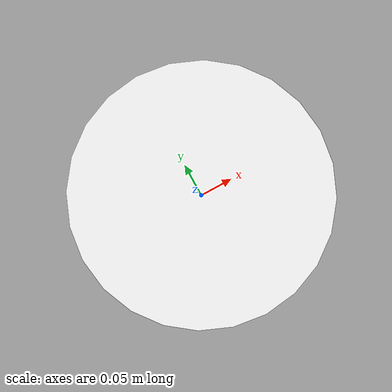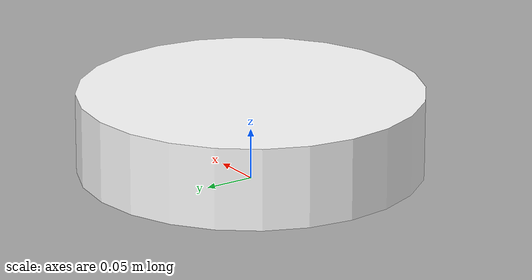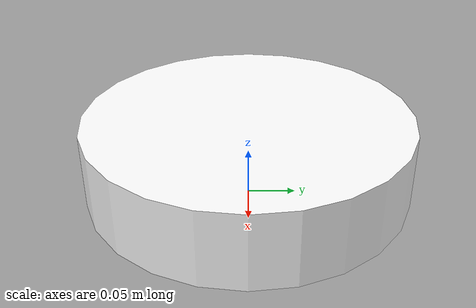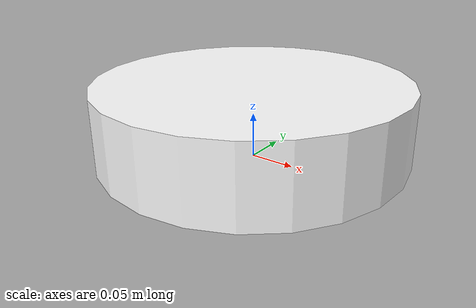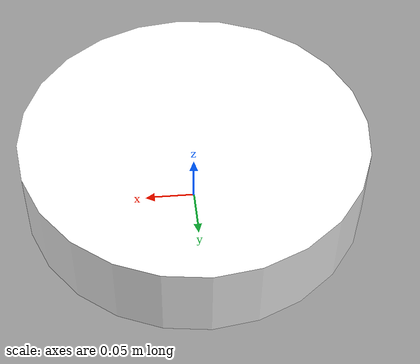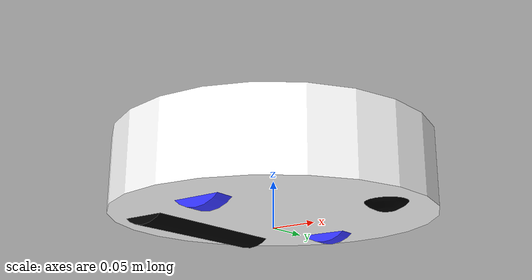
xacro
<?xml version="1.0"?>
<robot xmlns:xacro="http://www.ros.org/wiki/xacro" name="hubert">

    <xacro:include filename="inertial_macros.xacro"/>

    <xacro:property name="chassis_radius" value="0.17"/>
    <xacro:property name="chassis_height" value="0.08"/>
    <xacro:property name="chassis_mass" value="3.5"/>

    <xacro:property name="chassis_clearance" value="0.01"/>

    <xacro:property name="wheel_radius" value="0.04"/>
    <xacro:property name="wheel_thickness" value="0.02"/>
    <xacro:property name="wheel_mass" value="0.05"/>
    <xacro:property name="wheel_offset_x" value="0"/>
    <xacro:property name="wheel_offset_y" value="0.11"/>
    <xacro:property name="wheel_offset_z" value="${wheel_radius}"/>

    <xacro:property name="clearance_epsilon" value="0.001"/>

    <xacro:property name="caster_wheel_radius" value="0.03"/>
    <xacro:property name="caster_wheel_mass" value="0.01"/>
    <xacro:property name="caster_wheel_offset_x" value="0.13"/>
    <xacro:property name="caster_wheel_offset_z" value="${caster_wheel_radius + clearance_epsilon}"/>

    <xacro:property name="mob_radius" value="0.04"/>
    <xacro:property name="mob_width" value="0.18"/>
    <xacro:property name="mob_mass" value="0.1"/>
    <xacro:property name="mob_offset_x" value="-0.1"/>
    <xacro:property name="mob_offset_z" value="${mob_radius + clearance_epsilon}"/>

    <material name="white">
        <color rgba="1 1 1 1" />
    </material>

    <material name="orange">
        <color rgba="1 0.3 0.1 1"/>
    </material>

    <material name="blue">
        <color rgba="0.2 0.2 1 1"/>
    </material>

    <material name="black">
        <color rgba="0 0 0 1"/>
    </material>

    <!-- BASE LINK -->

    <link name="base_link">

    </link>

    <!-- BASE_FOOTPRINT LINK -->

    <joint name = "base_footprint_joint" type = "fixed">
        <parent link = "base_link"/>
        <child link = "base_footprint"/>
        <origin xyz = "0 0 0 " rpy = "0 0 0"/>
    </joint>

    <link name = "base_footprint">

    </link>

    <!-- CHASSIS LINK -->

    <joint name="chassis_joint" type="fixed">
        <parent link="base_link"/>
        <child link="chassis"/>
        <origin xyz="0 0 ${chassis_clearance + (chassis_height/2) }"/>
    </joint>

    <link name="chassis">
        <visual>
            <origin xyz="0 0 0"/>
            <geometry>
                <cylinder radius="${chassis_radius}" length="${chassis_height}"/>
            </geometry>
            <material name="white"/>
        </visual>
        <collision>
            <origin xyz="0 0 0."/>
            <geometry>
                <cylinder radius="${chassis_radius}" length="${chassis_height}"/>
            </geometry>
        </collision>
        <xacro:inertial_cylinder mass="${chassis_mass}" radius="${chassis_radius}" length="${chassis_height}">
            <origin xyz="0 0 0" rpy="0 0 0"/>
        </xacro:inertial_cylinder>
    </link>

    <gazebo reference="chassis">
        <material>Gazebo/White</material>
    </gazebo>

    <!-- LEFT WHEEL LINK -->

    <joint name="left_wheel_joint" type="continuous">
        <parent link="base_link"/>
        <child link="left_wheel"/>
        <origin xyz="${wheel_offset_x} ${wheel_offset_y} ${wheel_offset_z}" rpy="-${pi/2} 0 0" />
        <axis xyz="0 0 1"/>
    </joint>

    <link name="left_wheel">
        <visual>
            <geometry>
                <cylinder radius="${wheel_radius}" length="${wheel_thickness}"/>
            </geometry>
            <material name="blue"/>
        </visual>
        <collision>
            <geometry>
                <!-- use sphere for collision to avoid wheel drift in simulation -->
                <sphere radius="${wheel_radius}"/>
            </geometry>
        </collision>
        <xacro:inertial_cylinder mass="${wheel_mass}" radius="${wheel_radius}" length="${wheel_thickness}">
            <origin xyz="0 0 0" rpy="0 0 0"/>
        </xacro:inertial_cylinder>
    </link>

    <gazebo reference="left_wheel">
        <material>Gazebo/Blue</material>
    </gazebo>

    <!-- RIGHT WHEEL LINK -->

    <joint name="right_wheel_joint" type="continuous">
        <parent link="base_link"/>
        <child link="right_wheel"/>
        <origin xyz="${wheel_offset_x} ${-wheel_offset_y} ${wheel_offset_z}" rpy="${pi/2} 0 0" />
        <axis xyz="0 0 -1"/>
    </joint>

    <link name="right_wheel">
        <visual>
            <geometry>
                <cylinder radius="${wheel_radius}" length="${wheel_thickness}"/>
            </geometry>
            <material name="blue"/>
        </visual>
        <collision>
            <geometry>
                <!-- use sphere for collision to avoid wheel drift in simulation -->
                <sphere radius="${wheel_radius}"/>
            </geometry>
        </collision>
        <xacro:inertial_cylinder mass="${wheel_mass}" radius="${wheel_radius}" length="${wheel_thickness}">
            <origin xyz="0 0 0" rpy="0 0 0"/>
        </xacro:inertial_cylinder>
    </link>

    <gazebo reference="right_wheel">
        <material>Gazebo/Blue</material>
    </gazebo>

    <!-- CASTER WHEEL LINK -->

    <joint name="caster_wheel_joint" type="fixed">
        <parent link="base_link"/>
        <child link="caster_wheel"/>
        <origin xyz="${caster_wheel_offset_x} 0  ${caster_wheel_offset_z}"/>
    </joint>

    <link name="caster_wheel">
        <visual>
            <geometry>
                <sphere radius="${caster_wheel_radius}"/>
            </geometry>
            <material name="black"/>
        </visual>
        <collision>
            <geometry>
                <sphere radius="${caster_wheel_radius}"/>
            </geometry>
        </collision>
        <xacro:inertial_sphere mass="${caster_wheel_mass}" radius="${caster_wheel_radius}">
            <origin xyz="0 0 0" rpy="0 0 0"/>
        </xacro:inertial_sphere>
    </link>

    <gazebo reference="caster_wheel">
        <material>Gazebo/Black</material>
        <mu1 value="0.001"/>
        <mu2 value="0.001"/>
    </gazebo>

    <!-- MOB -->

    <joint name="mob_joint" type="fixed">
        <parent link="base_link"/>
        <child link="mob"/>
        <origin xyz="${mob_offset_x} 0 ${mob_offset_z}" rpy="${pi/2} 0 0"/>
    </joint>

    <link name="mob">
        <visual>
            <geometry>
                <cylinder radius="${mob_radius}" length="${mob_width}"/>
            </geometry>
            <material name="black"/>
        </visual>
        <collision>
            <geometry>
                <cylinder radius="${mob_radius}" length="${mob_width}"/>
            </geometry>
        </collision>
        <xacro:inertial_cylinder mass="${mob_mass}" radius="${mob_radius}" length="${mob_width}">
            <origin xyz="0 0 0" rpy="0 0 0"/>
        </xacro:inertial_cylinder>
    </link>

    <gazebo reference="mob">
        <material>Gazebo/Grey</material>
        <mu1 value="0.001"/>
        <mu2 value="0.001"/>
    </gazebo>

</robot>

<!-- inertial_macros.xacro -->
<robot xmlns:xacro="http://www.ros.org/wiki/xacro" >

    <!-- Specify some standard inertial calculations https://en.wikipedia.org/wiki/List_of_moments_of_inertia -->
    <!-- These make use of xacro's mathematical functionality -->

    <xacro:macro name="inertial_sphere" params="mass radius *origin">
        <inertial>
            <xacro:insert_block name="origin"/>
            <mass value="${mass}" />
            <inertia ixx="${(2/5) * mass * (radius*radius)}" ixy="0.0" ixz="0.0"
                    iyy="${(2/5) * mass * (radius*radius)}" iyz="0.0"
                    izz="${(2/5) * mass * (radius*radius)}" />
        </inertial>
    </xacro:macro>

    <xacro:macro name="inertial_box" params="mass x y z *origin">
        <inertial>
            <xacro:insert_block name="origin"/>
            <mass value="${mass}" />
            <inertia ixx="${(1/12) * mass * (y*y+z*z)}" ixy="0.0" ixz="0.0"
                    iyy="${(1/12) * mass * (x*x+z*z)}" iyz="0.0"
                    izz="${(1/12) * mass * (x*x+y*y)}" />
        </inertial>
    </xacro:macro>

    <xacro:macro name="inertial_cylinder" params="mass length radius *origin">
        <inertial>
            <xacro:insert_block name="origin"/>
            <mass value="${mass}" />
            <inertia ixx="${(1/12) * mass * (3*radius*radius + length*length)}" ixy="0.0" ixz="0.0"
                    iyy="${(1/12) * mass * (3*radius*radius + length*length)}" iyz="0.0"
                    izz="${(1/2) * mass * (radius*radius)}" />
        </inertial>
    </xacro:macro>

</robot>
